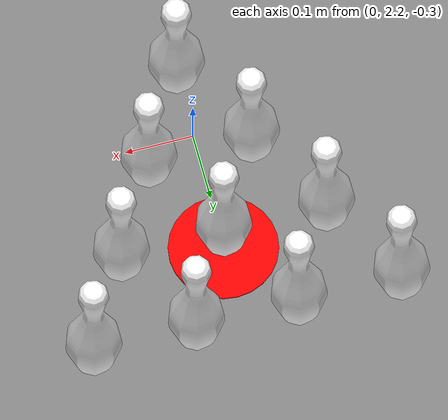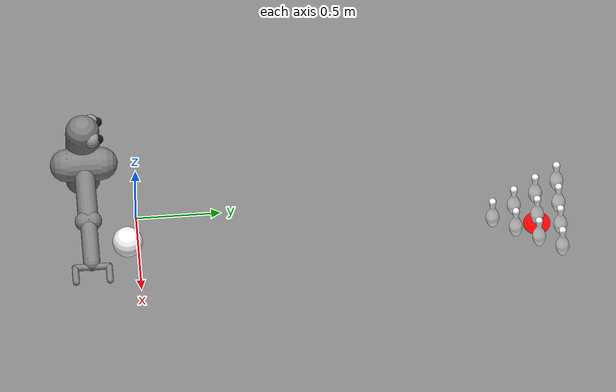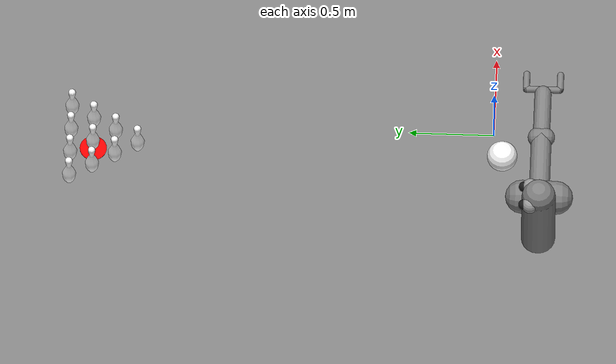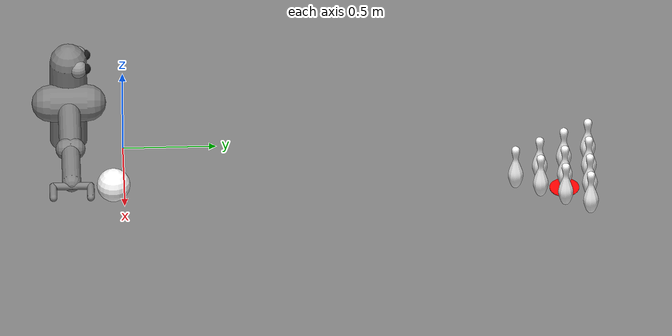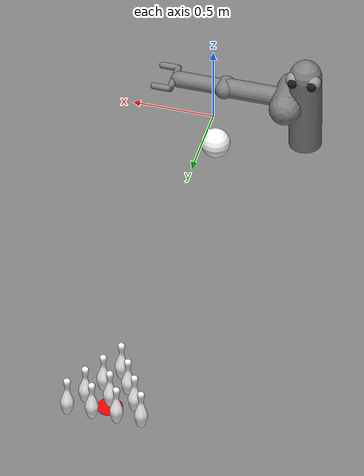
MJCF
<!--
Pusher model for `Pusher-v5`, based on openai/gym/Pusher
modified by @Kallinteris-Andreas
	- reduced body.object cylinder density 0.00001 -> 0.01
	- disabled body.object sphere
-->
<mujoco model="arm3d">
    <compiler inertiafromgeom="true" angle="radian" coordinate="local"/>
    <option timestep="0.01" gravity="0 0 -9.81" iterations="20" integrator="Euler" />

    <default>
      <joint armature='0.04' damping="1" limited="true"/>
      <geom friction=".8 .1 .1" density="300" margin="0.002" condim="1" contype="0" conaffinity="0"/>
    </default>

    <asset>
        <mesh name="Pin" file="./Pin.obj" scale="0.07 0.07 0.07"/>
    </asset>

    <worldbody>
      <light diffuse=".5 .5 .5" pos="0 0 3" dir="0 0 -1"/>
      <geom friction=".8 .1 .1" name="table" type="plane" pos="0 0.5 -0.325" size="5 5 0.1" contype="1" conaffinity="1"/>

      <body name="r_shoulder_pan_link" pos="-0.5 -0.28 0">
        <geom name="e1" type="sphere" rgba="0.6 0.6 0.6 1" pos="-0.06 0.05 0.2" size="0.05" />
        <geom name="e2" type="sphere" rgba="0.6 0.6 0.6 1" pos=" 0.06 0.05 0.2" size="0.05" />
        <geom name="e1p" type="sphere" rgba="0.1 0.1 0.1 1" pos="-0.06 0.09 0.2" size="0.03" />
        <geom name="e2p" type="sphere" rgba="0.1 0.1 0.1 1" pos=" 0.06 0.09 0.2" size="0.03" />
        <geom name="sp" type="capsule" fromto="0 0 -0.4 0 0 0.2" size="0.1" conaffinity="1" contype="1" />
        <joint name="r_shoulder_pan_joint" type="hinge" pos="0 0 0" axis="0 0 1" range="-3.14 3.14" damping="1.0" />

        <body name="r_shoulder_lift_link" pos="0.1 0 0">
          <geom name="sl" type="capsule" fromto="0 -0.1 0 0 0.1 0" size="0.1" conaffinity="1" contype="1" />
          <joint name="r_shoulder_lift_joint" type="hinge" pos="0 0 0" axis="0 1 0" range="-1.48 1.32" damping="5.0" />

          <body name="r_upper_arm_roll_link" pos="0 0 0">
            <geom name="uar" type="capsule" fromto="-0.1 0 0 0.1 0 0" size="0.02" />
            <joint name="r_upper_arm_roll_joint" type="hinge" pos="0 0 0" axis="1 0 0" range="-3.14 3.14" damping="0.1" />

            <body name="r_upper_arm_link" pos="0 0 0">
              <geom name="ua" type="capsule" fromto="0 0 0 0.4 0 0" size="0.06" />

              <body name="r_elbow_flex_link" pos="0.4 0 0">
                <geom name="ef" type="capsule" conaffinity="1" contype="1" fromto="0 -0.02 0 0.0 0.02 0" size="0.06" />
                <joint name="r_elbow_flex_joint" type="hinge" pos="0 0 0" axis="0 1 0" range="-2.7 2.7" damping="0.1" />

                <body name="r_forearm_roll_link" pos="0 0 0">
                  <geom name="fr" type="capsule" conaffinity="1" contype="1" fromto="-0.1 0 0 0.1 0 0" size="0.02" />
                  <joint name="r_forearm_roll_joint" type="hinge" limited="true" pos="0 0 0" axis="1 0 0" damping=".1" range="-3.14 3.14"/>

                  <body name="r_forearm_link" pos="0 0 0">
                    <geom name="fa" type="capsule" conaffinity="1" contype="1" fromto="0 0 0 0.291 0 0" size="0.05" />

                    <body name="r_wrist_flex_link" pos="0.321 0 0">
                      <geom name="wf" type="capsule" fromto="0 -0.02 0 0 0.02 0" size="0.01" />
                      <joint name="r_wrist_flex_joint" type="hinge" pos="0 0 0" axis="0 1 0" range="-3.14 3.14" damping=".1" />

                      <body name="r_wrist_roll_link" pos="0 0 0">
                        <joint name="r_wrist_roll_joint" type="hinge" pos="0 0 0" limited="true" axis="1 0 0" damping="0.1" range="-3.14 3.14"/>
                        <body name="tips_arm" pos="0 0 0">
                          <geom name="tip_arml" type="sphere" pos="0.1 -0.1 0." size="0.01" />
                          <geom name="tip_armr" type="sphere" pos="0.1 0.1 0." size="0.01" />
                        </body>
                        <geom type="capsule" fromto="0 -0.1 0. 0.0 +0.1 0" size="0.02" contype="1" conaffinity="1" />
                        <geom type="capsule" fromto="0 -0.1 0. 0.1 -0.1 0" size="0.02" contype="1" conaffinity="1" />
                        <geom type="capsule" fromto="0 +0.1 0. 0.1 +0.1 0." size="0.02" contype="1" conaffinity="1" />
                      </body>
                    </body>
                  </body>
                </body>
              </body>
            </body>
          </body>
        </body>
      </body>

    <body name="object" pos="0.0 -0.05 -0.25" >
        <joint name="obj_free" type="free" damping="0.0" />
        <geom rgba="1 1 1 1" type="sphere" size="0.09" density="1370" contype="1" conaffinity="1"/>
    </body>

    <!-- 10-Pin Setup -->
    <!-- Row 1 -->
      <body name="pin1" pos="0.0 2.0 -0.2">
        <joint name="pin1_free" type="free" damping="0.0"/>
        <geom type="mesh" mesh="Pin" size="0.025" density="500" condim="4" contype="1" conaffinity="1" rgba="1 1 1 1" />
      </body>

      <body name="pin2" pos="-0.0762 2.132 -0.2">
        <joint name="pin2_free" type="free" damping="0.0"/>
        <geom type="mesh" mesh="Pin" size="0.025" density="500" condim="4" contype="1" conaffinity="1" rgba="1 1 1 1" />
      </body>

      <body name="pin3" pos="0.0762 2.132 -0.2">
        <joint name="pin3_free" type="free" damping="0.0"/>
        <geom type="mesh" mesh="Pin" size="0.025" density="500" condim="4" contype="1" conaffinity="1" rgba="1 1 1 1" />
      </body>

      <body name="pin4" pos="-0.1524 2.2639 -0.2">
        <joint name="pin4_free" type="free" damping="0.0"/>
        <geom type="mesh" mesh="Pin" size="0.025" density="500" condim="4" contype="1" conaffinity="1" rgba="1 1 1 1" />
      </body>

      <body name="pin5" pos="0.0 2.2639 -0.2">
        <joint name="pin5_free" type="free" damping="0.0"/>
        <geom type="mesh" mesh="Pin" size="0.025" density="500" condim="4" contype="1" conaffinity="1" rgba="1 1 1 1" />
      </body>

      <body name="pin6" pos="0.1524 2.2639 -0.2">
        <joint name="pin6_free" type="free" damping="0.0"/>
        <geom type="mesh" mesh="Pin" size="0.025" density="500" condim="4" contype="1" conaffinity="1" rgba="1 1 1 1" />
      </body>

      <body name="pin7" pos="-0.2286 2.3959 -0.2">
        <joint name="pin7_free" type="free" damping="0.0"/>
        <geom type="mesh" mesh="Pin" size="0.025" density="500" condim="4" contype="1" conaffinity="1" rgba="1 1 1 1" />
      </body>

      <body name="pin8" pos="-0.0762 2.3959 -0.2">
        <joint name="pin8_free" type="free" damping="0.0"/>
        <geom type="mesh" mesh="Pin" size="0.025" density="500" condim="4" contype="1" conaffinity="1" rgba="1 1 1 1" />
      </body>

      <body name="pin9" pos="0.0762 2.3959 -0.2">
        <joint name="pin9_free" type="free" damping="0.0"/>
        <geom type="mesh" mesh="Pin" size="0.025" density="500" condim="4" contype="1" conaffinity="1" rgba="1 1 1 1" />
      </body>

      <body name="pin10" pos="0.2286 2.3959 -0.2">
        <joint name="pin10_free" type="free" damping="0.0"/>
        <geom type="mesh" mesh="Pin" size="0.025" density="500" condim="4" contype="1" conaffinity="1" rgba="1 1 1 1" />
      </body>

      <body name="random" pos="100 100 0.0">
        <joint name="random" type="free" damping="1"/>
        <geom type="mesh" mesh="Pin" size="0.025" mass="1" rgba="1 1 1 1" contype="1" conaffinity="1"/>
      </body>

    <body name="goal" pos="0.0 2.37 -0.3230">
        <geom rgba="1 0 0 1" type="cylinder" size="0.08 0.001 0.1" density='0.00001' contype="0" conaffinity="0"/>
        <joint name="goal_slidey" type="slide" pos="0 0 0" axis="0 1 0" range="-10.3213 10.3" damping="0.5"/>
        <joint name="goal_slidex" type="slide" pos="0 0 0" axis="1 0 0" range="-10.3213 10.3" damping="0.5"/>
    </body>

    </worldbody>

    <actuator>
      <motor joint="r_shoulder_pan_joint" ctrlrange="-2.0 2.0" gear='5' ctrllimited="true" />
      <motor joint="r_shoulder_lift_joint" ctrlrange="-2.0 2.0" gear='5' ctrllimited="true" />
      <motor joint="r_upper_arm_roll_joint" ctrlrange="-2.0 2.0" gear='5' ctrllimited="true" />
      <motor joint="r_elbow_flex_joint" ctrlrange="-2.0 2.0" gear='5' ctrllimited="true" />
      <motor joint="r_forearm_roll_joint" ctrlrange="-2.0 2.0" gear='5' ctrllimited="true" />
      <motor joint="r_wrist_flex_joint" ctrlrange="-2.0 2.0" gear='5' ctrllimited="true" />
      <motor joint="r_wrist_roll_joint" ctrlrange="-2.0 2.0" gear='5' ctrllimited="true"/>
    </actuator>
  </mujoco>
